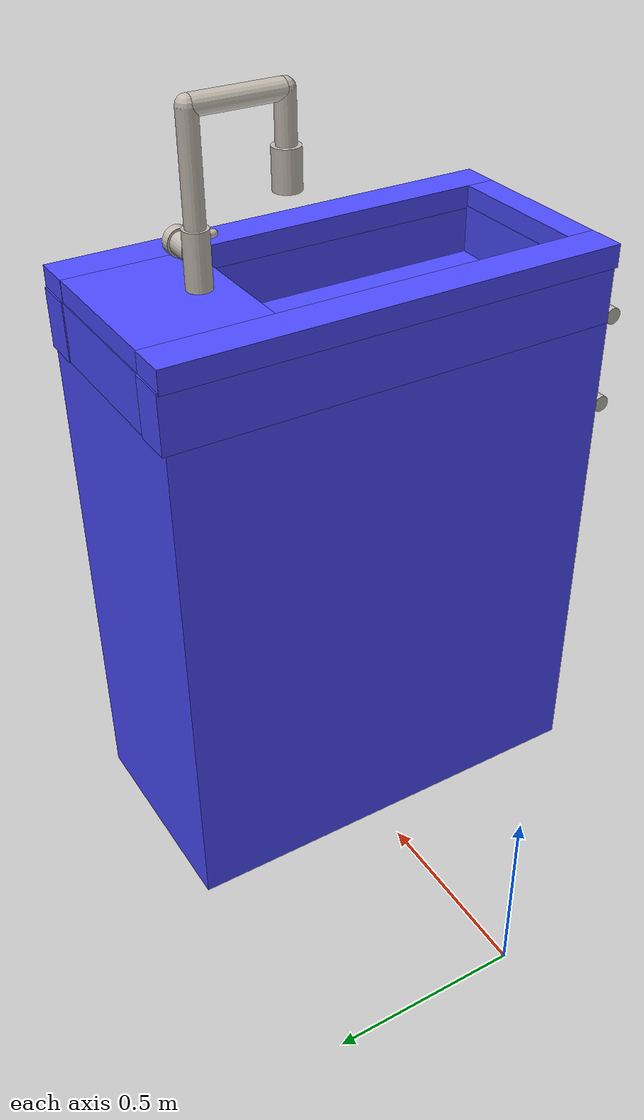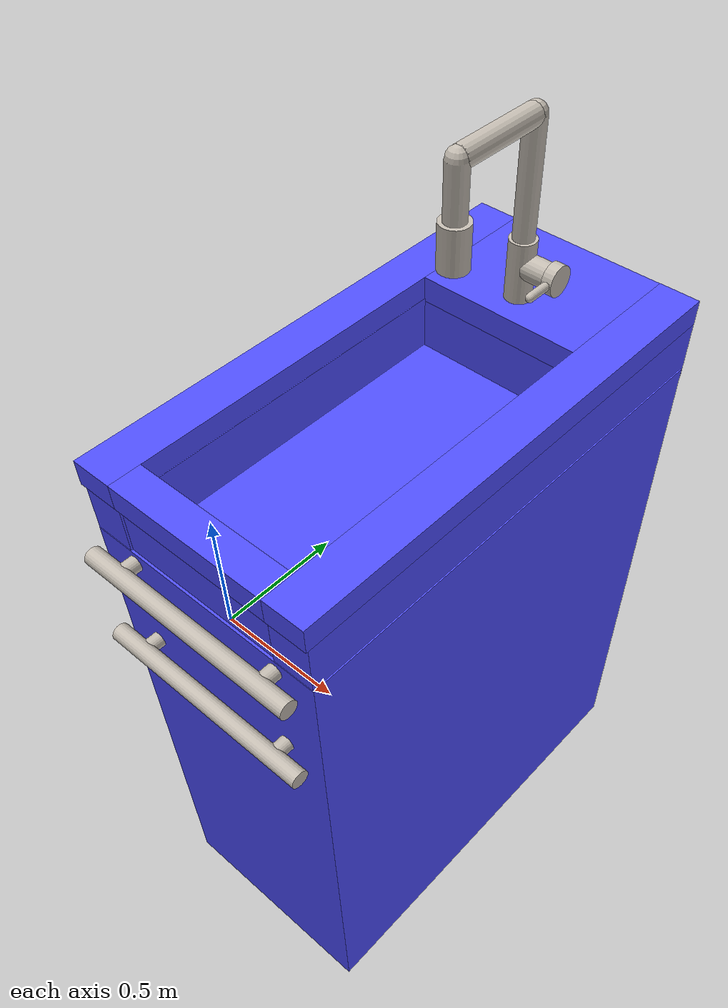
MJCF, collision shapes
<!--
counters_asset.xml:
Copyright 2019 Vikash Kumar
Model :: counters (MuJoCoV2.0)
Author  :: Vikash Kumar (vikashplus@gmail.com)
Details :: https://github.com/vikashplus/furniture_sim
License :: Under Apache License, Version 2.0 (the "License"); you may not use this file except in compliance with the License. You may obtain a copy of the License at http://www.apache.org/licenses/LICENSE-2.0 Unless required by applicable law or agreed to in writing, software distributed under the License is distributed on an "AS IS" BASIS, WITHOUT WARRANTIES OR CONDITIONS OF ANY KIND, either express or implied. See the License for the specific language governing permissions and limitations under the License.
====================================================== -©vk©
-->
<mujoco model="kitchen_counter">
    <compiler angle="radian" meshdir="" texturedir=""/>

    <!-- Include assets if they exist -->
    <include file="counters_asset.xml"/>

    <worldbody>
        <body name="kitchen_counter" pos="0 0 0">
            <!-- Include body if it exists -->
            <include file="sink_counter_body.xml"/>
        </body>
    </worldbody>
</mujoco>

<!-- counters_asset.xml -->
<mujocoinclude>
    <compiler inertiafromgeom="auto" inertiagrouprange="4 4" angle="radian"/>

    <asset>
        <mesh file="meshes/cabinetdrawer.stl" name="cabinetdrawer"/>
        <mesh file="meshes/cabinethandle.stl" name="cabinethandle"/>
        <mesh file="meshes/cabinetbase.stl" name="cabinetbase"/>
        <mesh file="meshes/countertop.stl" name="countertop"/>
        <mesh file="meshes/faucet.stl" name="faucet"/>

        <texture name="T_counter_metal" type="cube" height="1" width="1" file="textures/metal0.png" />
        <texture name="T_counter_marble" type="cube" height="1" width="1" file="textures/stone2.png" />
        <texture name="T_counter_wood" type="cube" height="2" width="2" file="textures/wood1.png"/>

        <material name="counter_metal" rgba="1 1 1 1" texture="T_counter_metal" texrepeat="3 3" reflectance=".5" shininess="1" texuniform="false" />
        <material name="counter_marble"  texture="T_counter_marble" texrepeat="1 1" reflectance=".2" shininess="1" texuniform="false" />
        <material name="counter_black" rgba=".2 .2 .2 1" reflectance="1" shininess="1"  />
        <material name="counter_blue" texture="T_counter_wood" rgba="1 1 1 1" reflectance="1" shininess="1" texuniform="false"/>
        <material name="counter_collision_blue" rgba="0.3 0.3 1.0 0.5" shininess="0" specular="0" />

    </asset>

    <default>
        <default class="counters">
            <joint damping="2" frictionloss="2" armature=".01" limited="true"/>
            <geom conaffinity="0" contype="0" group="1" material="counter_metal" type="mesh"/>
            <default class="counter_collision">
                <geom conaffinity="1" condim="3" contype="0" group="4" margin="0.001" material="counter_collision_blue"/>
            </default>
        </default>
    </default>

</mujocoinclude>

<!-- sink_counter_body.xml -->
<mujocoinclude>
    <body name="sink_counter" childclass="counters">
        <geom material="counter_blue" mesh="cabinetbase"/>
        <geom material="counter_marble" mesh="countertop"/>
        <site name="handle" type="sphere" pos="0.3 -0.5 1.2" size="0.02" rgba="0 0 1 0"/>
        <geom mesh="faucet" pos="0.904 -0.172 1.511"/>
        <geom pos="0.9 0.085 1.83" size="0.035 0.05" type="cylinder"/>
        <geom pos="0.9 0.085 1.92" size="0.025 0.08" type="capsule"/>
        <geom euler="1.57 0 0" pos="0.9 0.2 2" size="0.025 0.11" type="capsule"/>
        <geom pos="0.9 0.317 1.8" size="0.025 0.2" type="capsule"/>
        <geom pos="0.9 0.317 1.67" size="0.032 0.07" type="cylinder"/>
        <geom pos="0.947 0.318 1.68" euler="0 1.57 0" size="0.029 0.03" type="cylinder"/>
        <geom pos="0.99 0.318 1.68" euler="0 1.57 0" size="0.035 0.013 " type="cylinder"/>
        <geom euler="1.57 0 0" pos="0.99 0.26 1.68" size="0.01 0.03" type="capsule"/>
        <geom euler="0 1.57 0" pos="0.909 -0.695 1.39" size="0.022 0.28" type="cylinder"/>
        <geom euler="1.57 0 0" pos="0.71 -0.665 1.39" size="0.018 0.03" type="cylinder"/>
        <geom euler="1.57 0 0" pos="1.108 -0.665 1.39" size="0.018 0.03" type="cylinder"/>
        <geom euler="0 1.57 0" pos="0.909 -0.695 1.14" size="0.022 0.28" type="cylinder"/>
        <geom euler="1.57 0 0" pos="0.71 -0.665 1.14" size="0.018 0.03" type="cylinder"/>
        <geom euler="1.57 0 0" pos="1.108 -0.665 1.14" size="0.018 0.03" type="cylinder"/>

        <geom class="counter_collision" euler="0 1.57 0" pos="0.909 -0.695 1.39" size="0.022 0.28" type="cylinder" mass=".1"/>
        <geom class="counter_collision" euler="1.57 0 0" pos="0.71 -0.665 1.39" size="0.018 0.03" type="cylinder" mass=".02"/>
        <geom class="counter_collision" euler="1.57 0 0" pos="1.108 -0.665 1.39" size="0.018 0.03" type="cylinder" mass=".02"/>
        <geom class="counter_collision" euler="0 1.57 0" pos="0.909 -0.695 1.14" size="0.022 0.28" type="cylinder" mass=".1"/>
        <geom class="counter_collision" euler="1.57 0 0" pos="0.71 -0.665 1.14" size="0.018 0.03" type="cylinder" mass=".02"/>
        <geom class="counter_collision" euler="1.57 0 0" pos="1.108 -0.665 1.14" size="0.018 0.03" type="cylinder" mass=".02"/>
        <geom class="counter_collision" pos="0.907 -0.045 0.71" size="0.304 0.606 0.71" type="box" mass="3"/>
        <geom class="counter_collision" pos="1.159 -0.045 1.57" size="0.051 0.611 0.03" type="box" mass=".2"/>
        <geom class="counter_collision" pos="0.649 -0.045 1.57" size="0.051 0.611 0.03" type="box" mass=".2"/>
        <geom class="counter_collision" pos="0.904 0.4 1.57" size="0.204 0.165 0.03" type="box" mass=".2"/>
        <geom class="counter_collision" pos="0.904 -0.617 1.57" size="0.204 0.039 0.03" type="box" mass=".2"/>
        <geom class="counter_collision" pos="1.158 -0.04 1.47" size="0.05 0.61 0.076" type="box" mass=".2"/>
        <geom class="counter_collision" pos="0.652 -0.04 1.47" size="0.05 0.61 0.076" type="box" mass=".2"/>
        <geom class="counter_collision" pos="0.904 0.401 1.47" size="0.204 0.166 0.076" type="box" mass=".2"/>
        <geom class="counter_collision" pos="0.904 -0.611 1.47" size="0.206 0.034 0.076" type="box" mass=".2"/>
        <geom class="counter_collision" pos="0.9 0.085 1.83" size="0.035 0.05" type="cylinder" mass=".02"/>
        <geom class="counter_collision" pos="0.9 0.085 1.92" size="0.025 0.08" type="capsule" mass=".02"/>
        <geom class="counter_collision" euler="1.57 0 0" pos="0.9 0.2 2" size="0.025 0.11" type="capsule" mass=".02"/>
        <geom class="counter_collision" pos="0.9 0.317 1.8" size="0.025 0.2" type="capsule" mass=".02"/>
        <geom class="counter_collision" pos="0.9 0.317 1.67" size="0.032 0.07" type="cylinder" mass=".02"/>
        <geom class="counter_collision" pos="0.947 0.318 1.68" euler="0 1.57 0" size="0.029 0.03" type="cylinder" mass=".02"/>
        <geom class="counter_collision" pos="0.99 0.318 1.68" euler="0 1.57 0" size="0.035 0.013 " type="cylinder" mass=".02"/>
        <geom class="counter_collision" euler="1.57 0 0" pos="0.99 0.26 1.68" size="0.01 0.03" type="capsule" mass=".02"/>
    </body>
</mujocoinclude>
